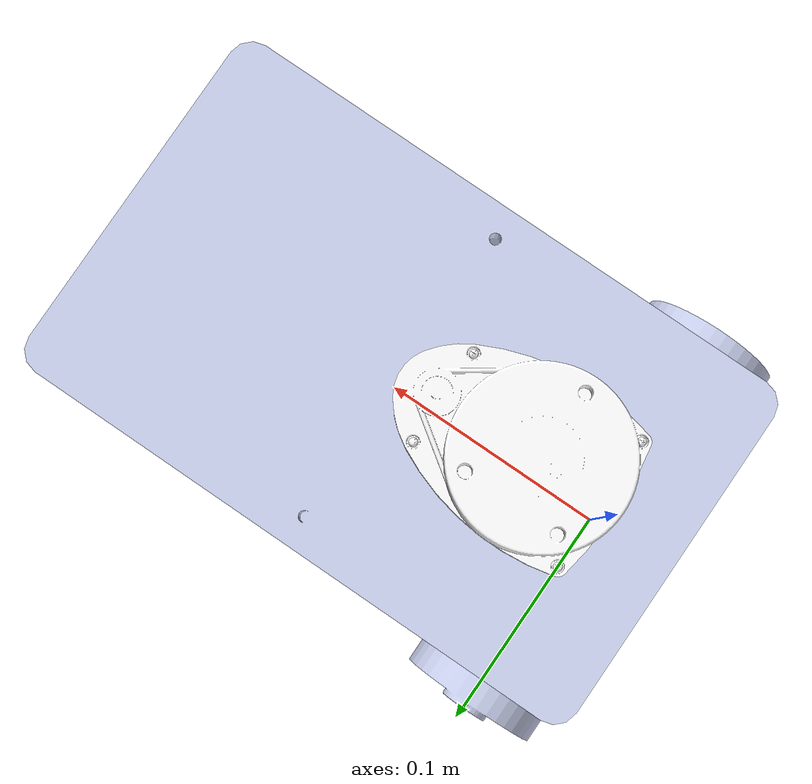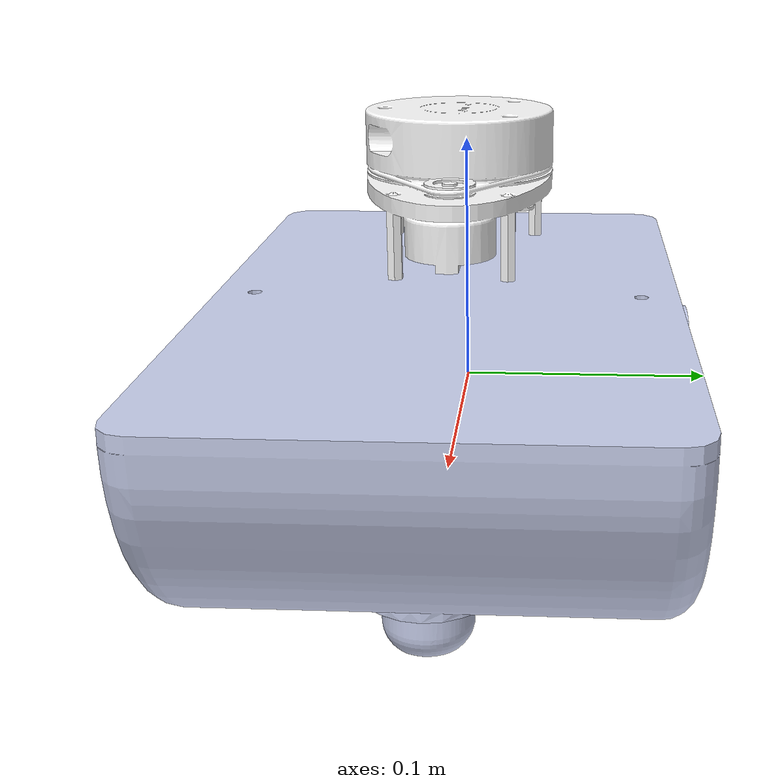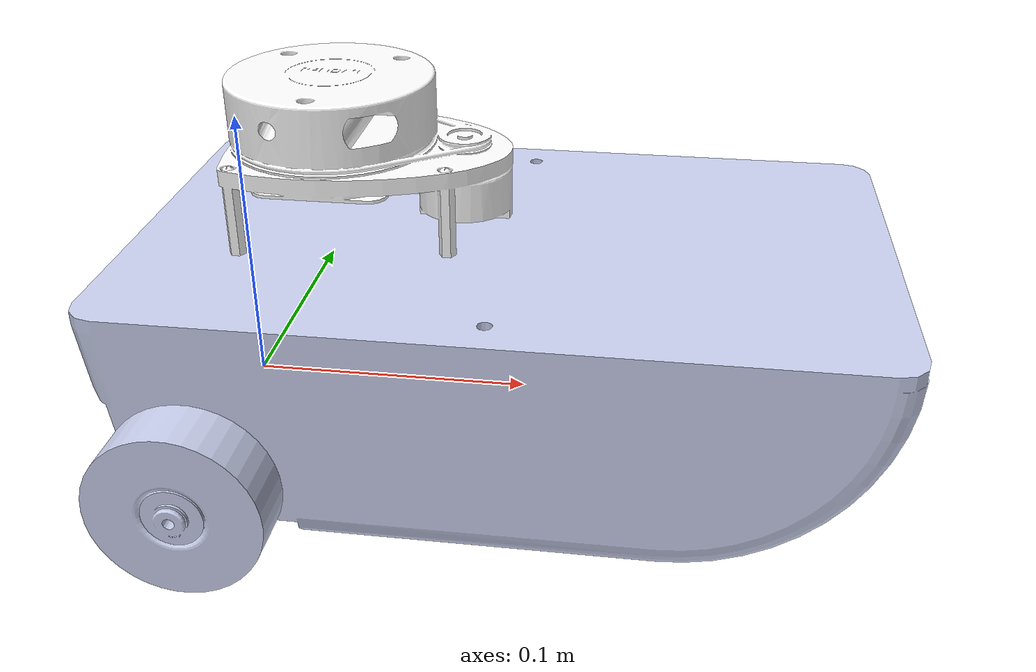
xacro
<?xml version="1.0"?>
<!-- Basic differential drive mobile base -->
<!--
Copied and modified from ROS1 example -
https://github.com/ros-simulation/gazebo_ros_demos/blob/kinetic-devel/diffbot_description/urdf/diffbot.xacro
-->
<robot xmlns:xacro="http://www.ros.org/wiki/xacro" name="diffdrive_robot">
  <xacro:arg name="use_gazebo" default="false" />

  <!-- Enable setting arguments from the launch file -->
  <xacro:arg name="use_fake_hardware" default="true" />
  <xacro:arg name="fake_sensor_commands" default="false" />
  <xacro:arg name="prefix" default="" />

  <xacro:include filename="$(find taylor_robot)/urdf/taylor.robot.urdf.xacro" />

  <xacro:include filename="$(find taylor_robot)/gazebo/taylor.materials.xacro" />

  <!-- Import all Gazebo-customization elements, including Gazebo colors -->
  <xacro:include filename="$(find taylor_robot)/gazebo/taylor.gazebo.xacro" />

  <!-- Import Rviz colors -->
  <xacro:include filename="$(find taylor_robot)/gazebo/taylor.materials.xacro" />

  <!-- Import diffbot ros2_control description -->
  <xacro:include filename="$(find taylor_robot)/ros2_control/taylor_system.ros2_control.xacro" />

  <xacro:taylor_system
    name="TaylorSystem" prefix="$(arg prefix)"
    use_fake_hardware="$(arg use_fake_hardware)"
    fake_sensor_commands="$(arg fake_sensor_commands)"/>

</robot>

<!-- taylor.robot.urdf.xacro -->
<robot xmlns:xacro="http://www.ros.org/wiki/xacro" name="taylor_robot">

  <xacro:arg name="prefix" default=""/>

  <xacro:include filename="$(find taylor_robot)/gazebo/taylor.materials.xacro"/>
  <xacro:include filename="$(find taylor_robot)/urdf/taylor.lidar.xacro"/>
  <xacro:include filename="$(find taylor_robot)/urdf/taylor.robot.core.xacro"/>
  <xacro:include filename="$(find taylor_robot)/ros2_control/taylor.ros2_control.xacro"/>

  <xacro:taylor prefix="$(arg prefix)"/>

  <xacro:taylor_ros2_control name="Taylor" prefix="$(arg prefix)"/>

</robot>

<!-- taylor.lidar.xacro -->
<robot xmlns:xacro="http://www.ros.org/wiki/xacro">

    <joint name="laser_joint" type="fixed">
        <parent link="lidar"/>
        <child link="laser_frame"/>
        <origin xyz="0 0 0" rpy="${-pi/2} 0 0"/>
    </joint>

    <link name="laser_frame"/>

    <gazebo reference="laser_frame">
        <sensor name="lase" type="ray">
            <pose> 0 0 0 0 0 0 </pose>
            <visualize>true</visualize>
            <update_rate>120</update_rate>
            <ray>
                <scan>
                    <horizontal>
                        <samples>720</samples>
                        <resolution>1</resolution>
                        <min_angle>-3.15</min_angle>
                        <max_angle>3.14</max_angle>
                    </horizontal>
                </scan>
                <range>
                    <min>0.3</min>
                    <max>12</max>
                    <resolution>0.1</resolution>
                </range>
            </ray>
            <plugin name="laser_controller" filename="libgazebo_ros_ray_sensor.so">
                <ros>
                    <argument>~/out:=scan</argument>
                </ros>
                <output_type>sensor_msgs/LaserScan</output_type>
                <frame_name>laser_frame</frame_name>
            </plugin>
        </sensor>
    </gazebo>

</robot>

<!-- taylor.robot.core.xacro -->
<robot xmlns:xacro="http://www.ros.org/wiki/xacro" name="taylor_robot">

  <xacro:macro name="taylor" params="prefix">

    <link name="chassis_link">
    <inertial>
      <origin xyz="0.097174 0.025101 1.9337E-06" rpy="0 0 0"/>

      <mass value="0.65385" />

      <inertia
        ixx="0.002038"
        ixy="-4.4552E-05"
        ixz="-3.3397E-08"
        iyy="0.0059638"
        iyz="-1.9482E-08"
        izz="0.0043786"
      />

    </inertial>

    <visual>
      <origin xyz="0 0 0" rpy="0 0 0" />

      <geometry>
        <mesh filename="file://$(find taylor_robot)/meshes/chassis_link.STL" scale="1 1 1" />
      </geometry>

      <material name="">
        <color rgba="0.79216 0.81961 0.93333 1" />
      </material>

    </visual>

    <collision>
      <origin xyz="0 0 0" rpy="0 0 0" />
      <geometry>
        <mesh filename="file://$(find taylor_robot)/meshes/chassis_link.STL" scale="1 1 1" />
      </geometry>
    </collision>
  </link>

  <link name="right_wheel">
    <inertial>
      <origin
        xyz="-0.0134995209094582 -2.03221668610353E-06 -3.11022023206695E-11"
        rpy="0 0 0" />
      <mass
        value="0.0573675865850721" />
      <inertia
        ixx="2.54892095119016E-05"
        ixy="2.67586021620391E-09"
        ixz="-1.15289456121779E-14"
        iyy="1.46655937346885E-05"
        iyz="1.90020714591229E-14"
        izz="1.46625450142094E-05" />
    </inertial>
    <visual>
      <origin
        xyz="0 0 0"
        rpy="0 0 0" />
      <geometry>
        <mesh filename="file://$(find taylor_robot)/meshes/right_wheel.STL" scale="1 1 1" />
      </geometry>
      <material
        name="">
        <color
          rgba="0.792156862745098 0.819607843137255 0.933333333333333 1" />
      </material>
    </visual>
    <collision>
      <origin
        xyz="0 0 0"
        rpy="0 0 0" />
      <geometry>
        <mesh filename="file://$(find taylor_robot)/meshes/right_wheel.STL" scale="1 1 1" />
      </geometry>
    </collision>
  </link>
  <joint name="right_wheel_joint"
    type="continuous">
    <origin
      xyz="0 -0.069 0"
      rpy="1.5708 0 1.5708" />
    <parent
      link="chassis_link" />
    <child
      link="right_wheel" />
    <axis
      xyz="1 0 0" />
  </joint>
  <link name="left_wheel">
    <inertial>
      <origin
        xyz="0.0125004790905418 -2.03221668610353E-06 -3.11022039365138E-11"
        rpy="0 0 0" />
      <mass
        value="0.0573675865850721" />
      <inertia
        ixx="2.54892095119016E-05"
        ixy="2.67586021620392E-09"
        ixz="-1.15289456063992E-14"
        iyy="1.46655937346885E-05"
        iyz="1.90020714653885E-14"
        izz="1.46625450142094E-05" />
    </inertial>
    <visual>
      <origin
        xyz="0 0 0"
        rpy="0 0 0" />
      <geometry>
        <mesh filename="file://$(find taylor_robot)/meshes/left_wheel.STL" scale="1 1 1" />
      </geometry>
      <material
        name="">
        <color
          rgba="0.792156862745098 0.819607843137255 0.933333333333333 1" />
      </material>
    </visual>
    <collision>
      <origin
        xyz="0 0 0"
        rpy="0 0 0" />
      <geometry>
        <mesh filename="file://$(find taylor_robot)/meshes/left_wheel.STL" scale="1 1 1" />
      </geometry>
    </collision>
  </link>
  <joint name="left_wheel_joint"
    type="continuous">
    <origin
      xyz="0 0.069 0"
      rpy="1.5708 0 1.5708" />
    <parent
      link="chassis_link" />
    <child
      link="left_wheel" />
    <axis
      xyz="1 0 0" />
  </joint>
  <link name="caster_wheel">
    <inertial>
      <origin
        xyz="8.32667268468867E-17 -0.00982966964470464 -1.38777878078145E-17"
        rpy="0 0 0" />
      <mass
        value="0.00790078265000134" />
      <inertia
        ixx="6.3277471369579E-07"
        ixy="3.00987082068736E-22"
        ixz="-3.30872245021211E-22"
        iyy="8.42250473271864E-07"
        iyz="-4.2977660534153E-22"
        izz="5.63631984480031E-07" />
    </inertial>
    <visual>
      <origin
        xyz="0 0 0"
        rpy="0 0 0" />
      <geometry>
        <mesh filename="file://$(find taylor_robot)/meshes/caster_wheel.STL" scale="1 1 1" />
      </geometry>
      <material
        name="">
        <color
          rgba="0.792156862745098 0.819607843137255 0.933333333333333 1" />
      </material>
    </visual>
    <collision>
      <origin
        xyz="0 0 0"
        rpy="0 0 0" />
      <geometry>
        <mesh filename="file://$(find taylor_robot)/meshes/caster_wheel.STL" scale="1 1 1" />
      </geometry>
    </collision>
  </link>
  <joint name="caster_wheel_joint"
    type="fixed">
    <origin
      xyz="0.17 0 -0.009"
      rpy="1.5708 0 -0.16473" />
    <parent
      link="chassis_link" />
    <child
      link="caster_wheel" />
    <axis
      xyz="0 1 0" />
  </joint>
  <link name="lidar">
    <inertial>
      <origin
        xyz="0 0 0"
        rpy="0 0 0" />
      <mass
        value="0" />
      <inertia
        ixx="0"
        ixy="0"
        ixz="0"
        iyy="0"
        iyz="0"
        izz="0" />
    </inertial>
    <visual>
      <origin
        xyz="0 0 0"
        rpy="0 0 0" />
      <geometry>
        <mesh filename="file://$(find taylor_robot)/meshes/lidar.STL" scale="1 1 1" />
      </geometry>
      <material
        name="">
        <color
          rgba="1 1 1 1" />
      </material>
    </visual>
    <collision>
      <origin
        xyz="0 0 0"
        rpy="0 0 0" />
      <geometry>
        <mesh filename="file://$(find taylor_robot)/meshes/lidar.STL" scale="1 1 1" />
      </geometry>
    </collision>
  </link>
  <joint name="lidar_joint"
    type="fixed">
    <origin
      xyz="0.034828 0 0.0936"
      rpy="1.5708 0 0" />
    <parent
      link="chassis_link" />
    <child
      link="lidar" />
    <axis
      xyz="0 0 0" />
  </joint>

  <gazebo reference="caster_wheel">
    <mu1 value="0.001"/>
    <mu2 value="0.001"/>
  </gazebo>

  <gazebo reference="right_wheel">
    <material>Gazebo/Black</material>
  </gazebo>

  <gazebo reference="left_wheel">
    <material>Gazebo/Black</material>
  </gazebo>

  <gazebo reference="lidar">
    <material>Gazebo/Black</material>
  </gazebo>

  <gazebo reference="chassis_link">
    <material>Gazebo/Red</material>
  </gazebo>
</xacro:macro>

</robot>
